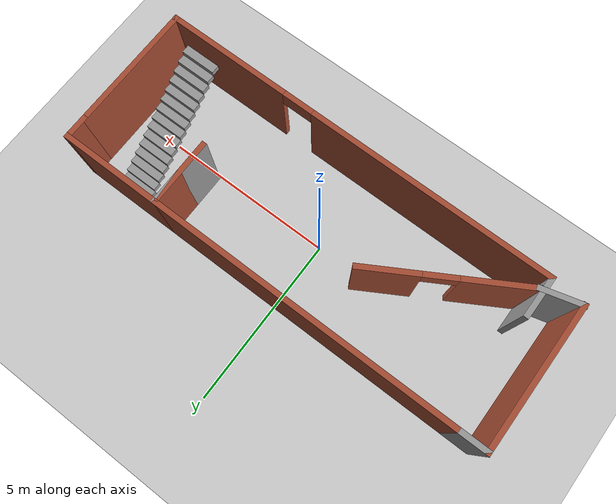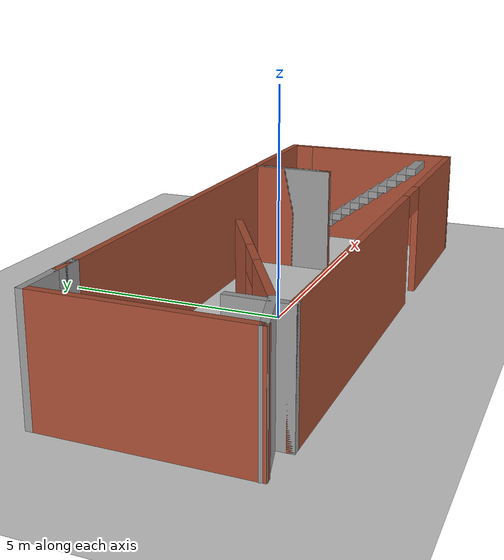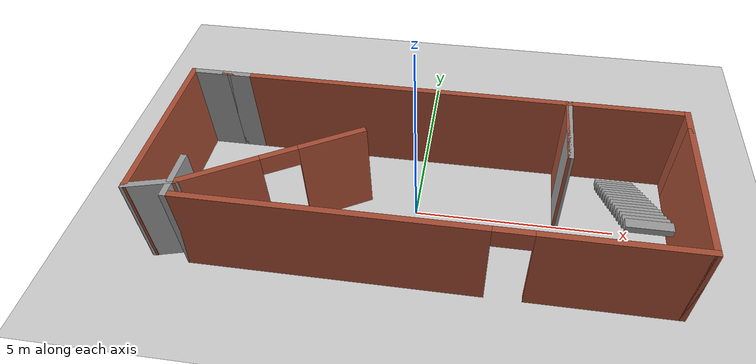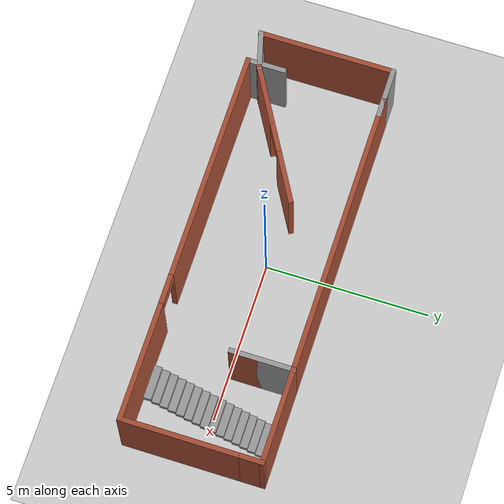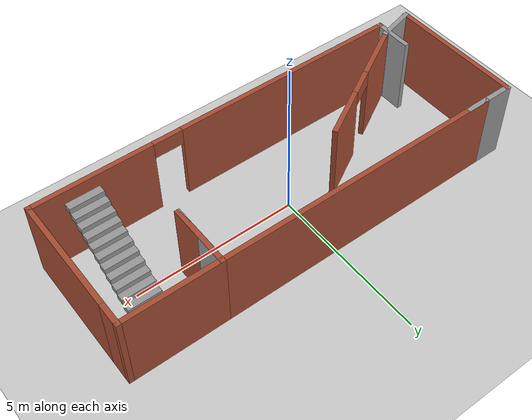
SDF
<sdf version="1.6">
 <world name="default">
  <light name="sun" type="directional">
   <pose>0 0 10 0 -0 0</pose>
   <diffuse>0.8 0.8 0.8 1</diffuse>
   <specular>0.1 0.1 0.1 1</specular>
   <attenuation>
    <range>1000</range>
    <constant>0.9</constant>
    <linear>0.01</linear>
    <quadratic>0.001</quadratic>
   </attenuation>
   <direction>-0.5 0.5 -1</direction>
  </light>
  <model name="ground_plane">
   <static>1</static>
   <link name="link">
    <collision name="collision">
     <geometry><plane><normal>0 0 1</normal><size>100 100</size></plane></geometry>
     <surface><friction><ode><mu>100</mu><mu2>50</mu2></ode></friction></surface>
    </collision>
    <visual name="visual">
     <cast_shadows>0</cast_shadows>
     <geometry><plane><normal>0 0 1</normal><size>100 100</size></plane></geometry>
     <material>
      <script><uri>file://media/materials/scripts/gazebo.material</uri><name>Gazebo/Grey</name></script>
     </material>
    </visual>
   </link>
  </model>
  <gravity>0 0 -9.8</gravity>
  <magnetic_field>6e-06 2.3e-05 -4.2e-05</magnetic_field>
  <atmosphere type="adiabatic"/>
  <physics name="default_physics" default="0" type="ode">
   <max_step_size>0.001</max_step_size>
   <real_time_factor>1</real_time_factor>
   <real_time_update_rate>1000</real_time_update_rate>
  </physics>
  <scene><ambient>0.4 0.4 0.4 1</ambient><background>0.7 0.7 0.7 1</background><shadows>1</shadows></scene>
  <spherical_coordinates>
   <surface_model>EARTH_WGS84</surface_model>
   <latitude_deg>0</latitude_deg>
   <longitude_deg>0</longitude_deg>
   <elevation>0</elevation>
   <heading_deg>0</heading_deg>
  </spherical_coordinates>
  <model name="myrobotworld">
   <pose>0.123075 -0.129687 -0.028227 0 -0 0</pose>
   <link name="Stairs_0">
    <visual name="Stairs_0_Visual_0">
     <pose>5.00343 1.71333 0.083333 0 -0 0</pose>
     <geometry><box><size>1 0.233333 0.166667</size></box></geometry>
     <material>
      <script><uri>file://media/materials/scripts/gazebo.material</uri><name>Gazebo/Grey</name></script>
      <ambient>1 1 1 1</ambient>
     </material>
    </visual>
    <collision name="Stairs_0_Collision_0">
     <geometry><box><size>1 0.233333 0.166667</size></box></geometry>
     <pose>5.00343 1.71333 0.083333 0 -0 0</pose>
    </collision>
    <visual name="Stairs_0_Visual_1">
     <pose>5.00343 1.48 0.25 0 -0 0</pose>
     <geometry><box><size>1 0.233333 0.166667</size></box></geometry>
     <material>
      <script><uri>file://media/materials/scripts/gazebo.material</uri><name>Gazebo/Grey</name></script>
      <ambient>1 1 1 1</ambient>
     </material>
    </visual>
    <collision name="Stairs_0_Collision_1">
     <geometry><box><size>1 0.233333 0.166667</size></box></geometry>
     <pose>5.00343 1.48 0.25 0 -0 0</pose>
    </collision>
    <visual name="Stairs_0_Visual_2">
     <pose>5.00343 1.24667 0.416667 0 -0 0</pose>
     <geometry><box><size>1 0.233333 0.166667</size></box></geometry>
     <material>
      <script><uri>file://media/materials/scripts/gazebo.material</uri><name>Gazebo/Grey</name></script>
      <ambient>1 1 1 1</ambient>
     </material>
    </visual>
    <collision name="Stairs_0_Collision_2">
     <geometry><box><size>1 0.233333 0.166667</size></box></geometry>
     <pose>5.00343 1.24667 0.416667 0 -0 0</pose>
    </collision>
    <visual name="Stairs_0_Visual_3">
     <pose>5.00343 1.01333 0.583333 0 -0 0</pose>
     <geometry><box><size>1 0.233333 0.166667</size></box></geometry>
     <material>
      <script><uri>file://media/materials/scripts/gazebo.material</uri><name>Gazebo/Grey</name></script>
      <ambient>1 1 1 1</ambient>
     </material>
    </visual>
    <collision name="Stairs_0_Collision_3">
     <geometry><box><size>1 0.233333 0.166667</size></box></geometry>
     <pose>5.00343 1.01333 0.583333 0 -0 0</pose>
    </collision>
    <visual name="Stairs_0_Visual_4">
     <pose>5.00343 0.78 0.75 0 -0 0</pose>
     <geometry><box><size>1 0.233333 0.166667</size></box></geometry>
     <material>
      <script><uri>file://media/materials/scripts/gazebo.material</uri><name>Gazebo/Grey</name></script>
      <ambient>1 1 1 1</ambient>
     </material>
    </visual>
    <collision name="Stairs_0_Collision_4">
     <geometry><box><size>1 0.233333 0.166667</size></box></geometry>
     <pose>5.00343 0.78 0.75 0 -0 0</pose>
    </collision>
    <visual name="Stairs_0_Visual_5">
     <pose>5.00343 0.546667 0.916667 0 -0 0</pose>
     <geometry><box><size>1 0.233333 0.166667</size></box></geometry>
     <material>
      <script><uri>file://media/materials/scripts/gazebo.material</uri><name>Gazebo/Grey</name></script>
      <ambient>1 1 1 1</ambient>
     </material>
    </visual>
    <collision name="Stairs_0_Collision_5">
     <geometry><box><size>1 0.233333 0.166667</size></box></geometry>
     <pose>5.00343 0.546667 0.916667 0 -0 0</pose>
    </collision>
    <visual name="Stairs_0_Visual_6">
     <pose>5.00343 0.313333 1.08333 0 -0 0</pose>
     <geometry><box><size>1 0.233333 0.166667</size></box></geometry>
     <material>
      <script><uri>file://media/materials/scripts/gazebo.material</uri><name>Gazebo/Grey</name></script>
      <ambient>1 1 1 1</ambient>
     </material>
    </visual>
    <collision name="Stairs_0_Collision_6">
     <geometry><box><size>1 0.233333 0.166667</size></box></geometry>
     <pose>5.00343 0.313333 1.08333 0 -0 0</pose>
    </collision>
    <visual name="Stairs_0_Visual_7">
     <pose>5.00343 0.08 1.25 0 -0 0</pose>
     <geometry><box><size>1 0.233333 0.166667</size></box></geometry>
     <material>
      <script><uri>file://media/materials/scripts/gazebo.material</uri><name>Gazebo/Grey</name></script>
      <ambient>1 1 1 1</ambient>
     </material>
    </visual>
    <collision name="Stairs_0_Collision_7">
     <geometry><box><size>1 0.233333 0.166667</size></box></geometry>
     <pose>5.00343 0.08 1.25 0 -0 0</pose>
    </collision>
    <visual name="Stairs_0_Visual_8">
     <pose>5.00343 -0.153334 1.41667 0 -0 0</pose>
     <geometry><box><size>1 0.233333 0.166667</size></box></geometry>
     <material>
      <script><uri>file://media/materials/scripts/gazebo.material</uri><name>Gazebo/Grey</name></script>
      <ambient>1 1 1 1</ambient>
     </material>
    </visual>
    <collision name="Stairs_0_Collision_8">
     <geometry><box><size>1 0.233333 0.166667</size></box></geometry>
     <pose>5.00343 -0.153334 1.41667 0 -0 0</pose>
    </collision>
    <visual name="Stairs_0_Visual_9">
     <pose>5.00343 -0.386667 1.58333 0 -0 0</pose>
     <geometry><box><size>1 0.233333 0.166667</size></box></geometry>
     <material>
      <script><uri>file://media/materials/scripts/gazebo.material</uri><name>Gazebo/Grey</name></script>
      <ambient>1 1 1 1</ambient>
     </material>
    </visual>
    <collision name="Stairs_0_Collision_9">
     <geometry><box><size>1 0.233333 0.166667</size></box></geometry>
     <pose>5.00343 -0.386667 1.58333 0 -0 0</pose>
    </collision>
    <visual name="Stairs_0_Visual_10">
     <pose>5.00343 -0.62 1.75 0 -0 0</pose>
     <geometry><box><size>1 0.233333 0.166667</size></box></geometry>
     <material>
      <script><uri>file://media/materials/scripts/gazebo.material</uri><name>Gazebo/Grey</name></script>
      <ambient>1 1 1 1</ambient>
     </material>
    </visual>
    <collision name="Stairs_0_Collision_10">
     <geometry><box><size>1 0.233333 0.166667</size></box></geometry>
     <pose>5.00343 -0.62 1.75 0 -0 0</pose>
    </collision>
    <visual name="Stairs_0_Visual_11">
     <pose>5.00343 -0.853334 1.91667 0 -0 0</pose>
     <geometry><box><size>1 0.233333 0.166667</size></box></geometry>
     <material>
      <script><uri>file://media/materials/scripts/gazebo.material</uri><name>Gazebo/Grey</name></script>
      <ambient>1 1 1 1</ambient>
     </material>
    </visual>
    <collision name="Stairs_0_Collision_11">
     <geometry><box><size>1 0.233333 0.166667</size></box></geometry>
     <pose>5.00343 -0.853334 1.91667 0 -0 0</pose>
    </collision>
    <visual name="Stairs_0_Visual_12">
     <pose>5.00343 -1.08667 2.08333 0 -0 0</pose>
     <geometry><box><size>1 0.233333 0.166667</size></box></geometry>
     <material>
      <script><uri>file://media/materials/scripts/gazebo.material</uri><name>Gazebo/Grey</name></script>
      <ambient>1 1 1 1</ambient>
     </material>
    </visual>
    <collision name="Stairs_0_Collision_12">
     <geometry><box><size>1 0.233333 0.166667</size></box></geometry>
     <pose>5.00343 -1.08667 2.08333 0 -0 0</pose>
    </collision>
    <visual name="Stairs_0_Visual_13">
     <pose>5.00343 -1.32 2.25 0 -0 0</pose>
     <geometry><box><size>1 0.233333 0.166667</size></box></geometry>
     <material>
      <script><uri>file://media/materials/scripts/gazebo.material</uri><name>Gazebo/Grey</name></script>
      <ambient>1 1 1 1</ambient>
     </material>
    </visual>
    <collision name="Stairs_0_Collision_13">
     <geometry><box><size>1 0.233333 0.166667</size></box></geometry>
     <pose>5.00343 -1.32 2.25 0 -0 0</pose>
    </collision>
    <visual name="Stairs_0_Visual_14">
     <pose>5.00343 -1.55333 2.41667 0 -0 0</pose>
     <geometry><box><size>1 0.233333 0.166667</size></box></geometry>
     <material>
      <script><uri>file://media/materials/scripts/gazebo.material</uri><name>Gazebo/Grey</name></script>
      <ambient>1 1 1 1</ambient>
     </material>
    </visual>
    <collision name="Stairs_0_Collision_14">
     <geometry><box><size>1 0.233333 0.166667</size></box></geometry>
     <pose>5.00343 -1.55333 2.41667 0 -0 0</pose>
    </collision>
   </link>
   <link name="Wall_0">
    <collision name="Wall_0_Collision">
     <geometry><box><size>1.25 0.15 2.5</size></box></geometry>
     <pose>0 0 1.25 0 -0 0</pose>
    </collision>
    <visual name="Wall_0_Visual">
     <pose>0 0 1.25 0 -0 0</pose>
     <geometry><box><size>1.25 0.15 2.5</size></box></geometry>
     <material>
      <script><uri>file://media/materials/scripts/gazebo.material</uri><name>Gazebo/Grey</name></script>
      <ambient>1 1 1 1</ambient>
     </material>
    </visual>
    <pose>-5.31657 -1.55 0 0 0 -1.5708</pose>
   </link>
   <link name="Wall_1">
    <pose>0.483428 -2.1 0 0 -0 0</pose>
    <visual name="Wall_1_Visual_0">
     <pose>-2.2875 0 1.25 0 -0 0</pose>
     <geometry><box><size>7.175 0.15 2.5</size></box></geometry>
     <material>
      <script><uri>file://media/materials/scripts/gazebo.material</uri><name>Gazebo/Bricks</name></script>
      <ambient>1 1 1 1</ambient>
     </material>
    </visual>
    <collision name="Wall_1_Collision_0">
     <geometry><box><size>7.175 0.15 2.5</size></box></geometry>
     <pose>-2.2875 0 1.25 0 -0 0</pose>
    </collision>
    <visual name="Wall_1_Visual_1">
     <pose>4.0375 0 1.25 0 -0 0</pose>
     <geometry><box><size>3.675 0.15 2.5</size></box></geometry>
     <material>
      <script><uri>file://media/materials/scripts/gazebo.material</uri><name>Gazebo/Bricks</name></script>
      <ambient>1 1 1 1</ambient>
     </material>
    </visual>
    <collision name="Wall_1_Collision_1">
     <geometry><box><size>3.675 0.15 2.5</size></box></geometry>
     <pose>4.0375 0 1.25 0 -0 0</pose>
    </collision>
    <visual name="Wall_1_Visual_2">
     <pose>1.75 0 2.25 0 -0 0</pose>
     <geometry><box><size>0.9 0.15 0.5</size></box></geometry>
     <material>
      <script><uri>file://media/materials/scripts/gazebo.material</uri><name>Gazebo/Bricks</name></script>
      <ambient>1 1 1 1</ambient>
     </material>
    </visual>
    <collision name="Wall_1_Collision_2">
     <geometry><box><size>0.9 0.15 0.5</size></box></geometry>
     <pose>1.75 0 2.25 0 -0 0</pose>
    </collision>
   </link>
   <link name="Wall_10">
    <collision name="Wall_10_Collision">
     <geometry><box><size>0.75 0.15 2.5</size></box></geometry>
     <pose>0 0 1.25 0 -0 0</pose>
    </collision>
    <visual name="Wall_10_Visual">
     <pose>0 0 1.25 0 -0 0</pose>
     <geometry><box><size>0.75 0.15 2.5</size></box></geometry>
     <material>
      <script><uri>file://media/materials/scripts/gazebo.material</uri><name>Gazebo/Grey</name></script>
      <ambient>1 1 1 1</ambient>
     </material>
    </visual>
    <pose>-5.11657 2.1 0 0 -0 3.14159</pose>
   </link>
   <link name="Wall_11">
    <collision name="Wall_11_Collision">
     <geometry><box><size>1 0.15 2.5</size></box></geometry>
     <pose>0 0 1.25 0 -0 0</pose>
    </collision>
    <visual name="Wall_11_Visual">
     <pose>0 0 1.25 0 -0 0</pose>
     <geometry><box><size>1 0.15 2.5</size></box></geometry>
     <material>
      <script><uri>file://media/materials/scripts/gazebo.material</uri><name>Gazebo/Grey</name></script>
      <ambient>1 1 1 1</ambient>
     </material>
    </visual>
    <pose>-5.84157 2.1 0 0 -0 3.14159</pose>
   </link>
   <link name="Wall_12">
    <collision name="Wall_12_Collision">
     <geometry><box><size>4.25 0.15 2.5</size></box></geometry>
     <pose>0 0 1.25 0 -0 0</pose>
    </collision>
    <visual name="Wall_12_Visual">
     <pose>0 0 1.25 0 -0 0</pose>
     <geometry><box><size>4.25 0.15 2.5</size></box></geometry>
     <material>
      <script><uri>file://media/materials/scripts/gazebo.material</uri><name>Gazebo/Bricks</name></script>
      <ambient>1 1 1 1</ambient>
     </material>
    </visual>
    <pose>-6.26657 0.05 0 0 0 -1.5708</pose>
   </link>
   <link name="Wall_13">
    <collision name="Wall_13_Collision">
     <geometry><box><size>1.25 0.15 2.5</size></box></geometry>
     <pose>0 0 1.25 0 -0 0</pose>
    </collision>
    <visual name="Wall_13_Visual">
     <pose>0 0 1.25 0 -0 0</pose>
     <geometry><box><size>1.25 0.15 2.5</size></box></geometry>
     <material>
      <script><uri>file://media/materials/scripts/gazebo.material</uri><name>Gazebo/Grey</name></script>
      <ambient>1 1 1 1</ambient>
     </material>
    </visual>
    <pose>-5.73531 -1.85765 0 0 -0 0.261799</pose>
   </link>
   <link name="Wall_14">
    <pose>-3.32045 -0.627799 0 0 -0 0.523599</pose>
    <visual name="Wall_14_Visual_0">
     <pose>-1.27941 0 1.25 0 -0 0</pose>
     <geometry><box><size>1.94118 0.15 2.5</size></box></geometry>
     <material>
      <script><uri>file://media/materials/scripts/gazebo.material</uri><name>Gazebo/Bricks</name></script>
      <ambient>1 1 1 1</ambient>
     </material>
    </visual>
    <collision name="Wall_14_Collision_0">
     <geometry><box><size>1.94118 0.15 2.5</size></box></geometry>
     <pose>-1.27941 0 1.25 0 -0 0</pose>
    </collision>
    <visual name="Wall_14_Visual_1">
     <pose>1.42059 0 1.25 0 -0 0</pose>
     <geometry><box><size>1.65882 0.15 2.5</size></box></geometry>
     <material>
      <script><uri>file://media/materials/scripts/gazebo.material</uri><name>Gazebo/Bricks</name></script>
      <ambient>1 1 1 1</ambient>
     </material>
    </visual>
    <collision name="Wall_14_Collision_1">
     <geometry><box><size>1.65882 0.15 2.5</size></box></geometry>
     <pose>1.42059 0 1.25 0 -0 0</pose>
    </collision>
    <visual name="Wall_14_Visual_2">
     <pose>0.14118 0 2.25 0 -0 0</pose>
     <geometry><box><size>0.9 0.15 0.5</size></box></geometry>
     <material>
      <script><uri>file://media/materials/scripts/gazebo.material</uri><name>Gazebo/Bricks</name></script>
      <ambient>1 1 1 1</ambient>
     </material>
    </visual>
    <collision name="Wall_14_Collision_2">
     <geometry><box><size>0.9 0.15 0.5</size></box></geometry>
     <pose>0.14118 0 2.25 0 -0 0</pose>
    </collision>
   </link>
   <link name="Wall_2">
    <collision name="Wall_2_Collision">
     <geometry><box><size>3.75 0.15 2.5</size></box></geometry>
     <pose>0 0 1.25 0 -0 0</pose>
    </collision>
    <visual name="Wall_2_Visual">
     <pose>0 0 1.25 0 -0 0</pose>
     <geometry><box><size>3.75 0.15 2.5</size></box></geometry>
     <material>
      <script><uri>file://media/materials/scripts/gazebo.material</uri><name>Gazebo/Bricks</name></script>
      <ambient>1 1 1 1</ambient>
     </material>
    </visual>
    <pose>6.28343 -0.3 0 0 -0 1.5708</pose>
   </link>
   <link name="Wall_3">
    <collision name="Wall_3_Collision">
     <geometry><box><size>0.75 0.15 2.5</size></box></geometry>
     <pose>0 0 1.25 0 -0 0</pose>
    </collision>
    <visual name="Wall_3_Visual">
     <pose>0 0 1.25 0 -0 0</pose>
     <geometry><box><size>0.75 0.15 2.5</size></box></geometry>
     <material>
      <script><uri>file://media/materials/scripts/gazebo.material</uri><name>Gazebo/Bricks</name></script>
      <ambient>1 1 1 1</ambient>
     </material>
    </visual>
    <pose>6.28343 1.8 0 0 -0 1.5708</pose>
   </link>
   <link name="Wall_4">
    <collision name="Wall_4_Collision">
     <geometry><box><size>3 0.15 2.5</size></box></geometry>
     <pose>0 0 1.25 0 -0 0</pose>
    </collision>
    <visual name="Wall_4_Visual">
     <pose>0 0 1.25 0 -0 0</pose>
     <geometry><box><size>3 0.15 2.5</size></box></geometry>
     <material>
      <script><uri>file://media/materials/scripts/gazebo.material</uri><name>Gazebo/Bricks</name></script>
      <ambient>1 1 1 1</ambient>
     </material>
    </visual>
    <pose>4.85843 2.1 0 0 -0 3.14159</pose>
   </link>
   <link name="Wall_5">
    <collision name="Wall_5_Collision">
     <geometry><box><size>2 0.15 2.5</size></box></geometry>
     <pose>0 0 1.25 0 -0 0</pose>
    </collision>
    <visual name="Wall_5_Visual">
     <pose>0 0 1.25 0 -0 0</pose>
     <geometry><box><size>2 0.15 2.5</size></box></geometry>
     <material>
      <script><uri>file://media/materials/scripts/gazebo.material</uri><name>Gazebo/Grey</name></script>
      <ambient>1 1 1 1</ambient>
     </material>
    </visual>
    <pose>3.43343 1.175 0 0 0 -1.5708</pose>
   </link>
   <link name="Wall_6">
    <collision name="Wall_6_Collision">
     <geometry><box><size>2 0.15 2.5</size></box></geometry>
     <pose>0 0 1.25 0 -0 0</pose>
    </collision>
    <visual name="Wall_6_Visual">
     <pose>0 0 1.25 0 -0 0</pose>
     <geometry><box><size>2 0.15 2.5</size></box></geometry>
     <material>
      <script><uri>file://media/materials/scripts/gazebo.material</uri><name>Gazebo/Bricks</name></script>
      <ambient>1 1 1 1</ambient>
     </material>
    </visual>
    <pose>3.43343 1.175 0 0 -0 1.5708</pose>
   </link>
   <link name="Wall_7">
    <collision name="Wall_7_Collision">
     <geometry><box><size>9 0.15 2.5</size></box></geometry>
     <pose>0 0 1.25 0 -0 0</pose>
    </collision>
    <visual name="Wall_7_Visual">
     <pose>0 0 1.25 0 -0 0</pose>
     <geometry><box><size>9 0.15 2.5</size></box></geometry>
     <material>
      <script><uri>file://media/materials/scripts/gazebo.material</uri><name>Gazebo/Bricks</name></script>
      <ambient>1 1 1 1</ambient>
     </material>
    </visual>
    <pose>-0.991572 2.1 0 0 -0 3.14159</pose>
   </link>
   <link name="Wall_8">
    <collision name="Wall_8_Collision">
     <geometry><box><size>0.15 0.15 2.5</size></box></geometry>
     <pose>0 0 1.25 0 -0 0</pose>
    </collision>
    <visual name="Wall_8_Visual">
     <pose>0 0 1.25 0 -0 0</pose>
     <geometry><box><size>0.15 0.15 2.5</size></box></geometry>
     <material>
      <script><uri>file://media/materials/scripts/gazebo.material</uri><name>Gazebo/Grey</name></script>
      <ambient>1 1 1 1</ambient>
     </material>
    </visual>
    <pose>-5.41657 2.1 0 0 -0 0</pose>
   </link>
   <link name="Wall_9">
    <collision name="Wall_9_Collision">
     <geometry><box><size>0.75 0.15 2.5</size></box></geometry>
     <pose>0 0 1.25 0 -0 0</pose>
    </collision>
    <visual name="Wall_9_Visual">
     <pose>0 0 1.25 0 -0 0</pose>
     <geometry><box><size>0.75 0.15 2.5</size></box></geometry>
     <material>
      <script><uri>file://media/materials/scripts/gazebo.material</uri><name>Gazebo/Grey</name></script>
      <ambient>1 1 1 1</ambient>
     </material>
    </visual>
    <pose>-5.11657 2.1 0 0 -0 0</pose>
   </link>
   <static>1</static>
  </model>
 </world>
</sdf>
